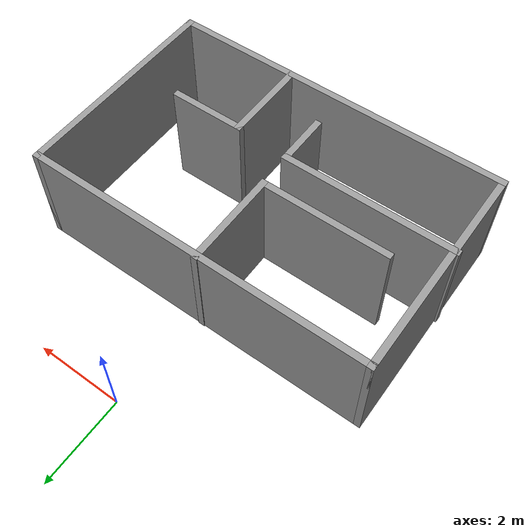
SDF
<?xml version='1.0'?>
<sdf version='1.7'>
  <model name='room'>
    <pose>-0.13775 -3.6725 0 0 -0 0</pose>
    <link name='Wall_0'>
      <collision name='Wall_0_Collision'>
        <geometry>
          <box>
            <size>8 0.15 2.5</size>
          </box>
        </geometry>
        <pose>0 0 1.25 0 -0 0</pose>
      </collision>
      <visual name='Wall_0_Visual'>
        <pose>0 0 1.25 0 -0 0</pose>
        <geometry>
          <box>
            <size>8 0.15 2.5</size>
          </box>
        </geometry>
        <material>
          <script>
            <uri>file://media/materials/scripts/gazebo.material</uri>
            <name>Gazebo/Grey</name>
          </script>
          <ambient>1 1 1 1</ambient>
        </material>
        <meta>
          <layer>0</layer>
        </meta>
      </visual>
      <pose>0.02275 1.2525 0 0 -0 0</pose>
    </link>
    <link name='Wall_1'>
      <collision name='Wall_1_Collision'>
        <geometry>
          <box>
            <size>5 0.15 2.5</size>
          </box>
        </geometry>
        <pose>0 0 1.25 0 -0 0</pose>
      </collision>
      <visual name='Wall_1_Visual'>
        <pose>0 0 1.25 0 -0 0</pose>
        <geometry>
          <box>
            <size>5 0.15 2.5</size>
          </box>
        </geometry>
        <material>
          <script>
            <uri>file://media/materials/scripts/gazebo.material</uri>
            <name>Gazebo/Grey</name>
          </script>
          <ambient>1 1 1 1</ambient>
        </material>
        <meta>
          <layer>0</layer>
        </meta>
      </visual>
      <pose>3.94775 -1.1725 0 0 -0 -1.5708</pose>
    </link>
    <link name='Wall_11'>
      <collision name='Wall_11_Collision'>
        <geometry>
          <box>
            <size>2 0.15 2.5</size>
          </box>
        </geometry>
        <pose>0 0 1.25 0 -0 0</pose>
      </collision>
      <visual name='Wall_11_Visual'>
        <pose>0 0 1.25 0 -0 0</pose>
        <geometry>
          <box>
            <size>2 0.15 2.5</size>
          </box>
        </geometry>
        <material>
          <script>
            <uri>file://media/materials/scripts/gazebo.material</uri>
            <name>Gazebo/Grey</name>
          </script>
          <ambient>1 1 1 1</ambient>
        </material>
        <meta>
          <layer>0</layer>
        </meta>
      </visual>
      <pose>1.14675 -2.634 0 0 -0 -1.5708</pose>
    </link>
    <link name='Wall_13'>
      <collision name='Wall_13_Collision'>
        <geometry>
          <box>
            <size>1.75 0.15 2.5</size>
          </box>
        </geometry>
        <pose>0 0 1.25 0 -0 0</pose>
      </collision>
      <visual name='Wall_13_Visual'>
        <pose>0 0 1.25 0 -0 0</pose>
        <geometry>
          <box>
            <size>1.75 0.15 2.5</size>
          </box>
        </geometry>
        <material>
          <script>
            <uri>file://media/materials/scripts/gazebo.material</uri>
            <name>Gazebo/Grey</name>
          </script>
          <ambient>1 1 1 1</ambient>
        </material>
        <meta>
          <layer>0</layer>
        </meta>
      </visual>
      <pose>1.94675 -1.709 0 0 -0 0</pose>
    </link>
    <link name='Wall_2'>
      <collision name='Wall_2_Collision'>
        <geometry>
          <box>
            <size>8 0.15 2.5</size>
          </box>
        </geometry>
        <pose>0 0 1.25 0 -0 0</pose>
      </collision>
      <visual name='Wall_2_Visual'>
        <pose>0 0 1.25 0 -0 0</pose>
        <geometry>
          <box>
            <size>8 0.15 2.5</size>
          </box>
        </geometry>
        <material>
          <script>
            <uri>file://media/materials/scripts/gazebo.material</uri>
            <name>Gazebo/Grey</name>
          </script>
          <ambient>1 1 1 1</ambient>
        </material>
        <meta>
          <layer>0</layer>
        </meta>
      </visual>
      <pose>0.02275 -3.5975 0 0 -0 3.14159</pose>
    </link>
    <link name='Wall_3'>
      <collision name='Wall_3_Collision'>
        <geometry>
          <box>
            <size>5 0.15 2.5</size>
          </box>
        </geometry>
        <pose>0 0 1.25 0 -0 0</pose>
      </collision>
      <visual name='Wall_3_Visual'>
        <pose>0 0 1.25 0 -0 0</pose>
        <geometry>
          <box>
            <size>5 0.15 2.5</size>
          </box>
        </geometry>
        <material>
          <script>
            <uri>file://media/materials/scripts/gazebo.material</uri>
            <name>Gazebo/Grey</name>
          </script>
          <ambient>1 1 1 1</ambient>
        </material>
        <meta>
          <layer>0</layer>
        </meta>
      </visual>
      <pose>-3.90225 -1.1725 0 0 -0 1.5708</pose>
    </link>
    <link name='Wall_5'>
      <collision name='Wall_5_Collision'>
        <geometry>
          <box>
            <size>2.25 0.15 2.5</size>
          </box>
        </geometry>
        <pose>0 0 1.25 0 -0 0</pose>
      </collision>
      <visual name='Wall_5_Visual'>
        <pose>0 0 1.25 0 -0 0</pose>
        <geometry>
          <box>
            <size>2.25 0.15 2.5</size>
          </box>
        </geometry>
        <material>
          <script>
            <uri>file://media/materials/scripts/gazebo.material</uri>
            <name>Gazebo/Grey</name>
          </script>
          <ambient>1 1 1 1</ambient>
        </material>
        <meta>
          <layer>0</layer>
        </meta>
      </visual>
      <pose>-0.11825 0.2195 0 0 -0 -1.5708</pose>
    </link>
    <link name='Wall_6'>
      <collision name='Wall_6_Collision'>
        <geometry>
          <box>
            <size>3 0.15 2.5</size>
          </box>
        </geometry>
        <pose>0 0 1.25 0 -0 0</pose>
      </collision>
      <visual name='Wall_6_Visual'>
        <pose>0 0 1.25 0 -0 0</pose>
        <geometry>
          <box>
            <size>3 0.15 2.5</size>
          </box>
        </geometry>
        <material>
          <script>
            <uri>file://media/materials/scripts/gazebo.material</uri>
            <name>Gazebo/Grey</name>
          </script>
          <ambient>1 1 1 1</ambient>
        </material>
        <meta>
          <layer>0</layer>
        </meta>
      </visual>
      <pose>-1.54325 -0.8305 0 0 -0 3.14159</pose>
    </link>
    <link name='Wall_8'>
      <collision name='Wall_8_Collision'>
        <geometry>
          <box>
            <size>4 0.15 2.5</size>
          </box>
        </geometry>
        <pose>0 0 1.25 0 -0 0</pose>
      </collision>
      <visual name='Wall_8_Visual'>
        <pose>0 0 1.25 0 -0 0</pose>
        <geometry>
          <box>
            <size>4 0.15 2.5</size>
          </box>
        </geometry>
        <material>
          <script>
            <uri>file://media/materials/scripts/gazebo.material</uri>
            <name>Gazebo/Grey</name>
          </script>
          <ambient>1 1 1 1</ambient>
        </material>
        <meta>
          <layer>0</layer>
        </meta>
      </visual>
      <pose>-2.02275 -1.6285 0 0 -0 0</pose>
    </link>
    <link name='Wall_9'>
      <collision name='Wall_9_Collision'>
        <geometry>
          <box>
            <size>1.25 0.15 2.5</size>
          </box>
        </geometry>
        <pose>0 0 1.25 0 -0 0</pose>
      </collision>
      <visual name='Wall_9_Visual'>
        <pose>0 0 1.25 0 -0 0</pose>
        <geometry>
          <box>
            <size>1.25 0.15 2.5</size>
          </box>
        </geometry>
        <material>
          <script>
            <uri>file://media/materials/scripts/gazebo.material</uri>
            <name>Gazebo/Grey</name>
          </script>
          <ambient>1 1 1 1</ambient>
        </material>
        <meta>
          <layer>0</layer>
        </meta>
      </visual>
      <pose>-0.09775 -2.1785 0 0 -0 -1.5708</pose>
    </link>
    <static>1</static>
  </model>
</sdf>
